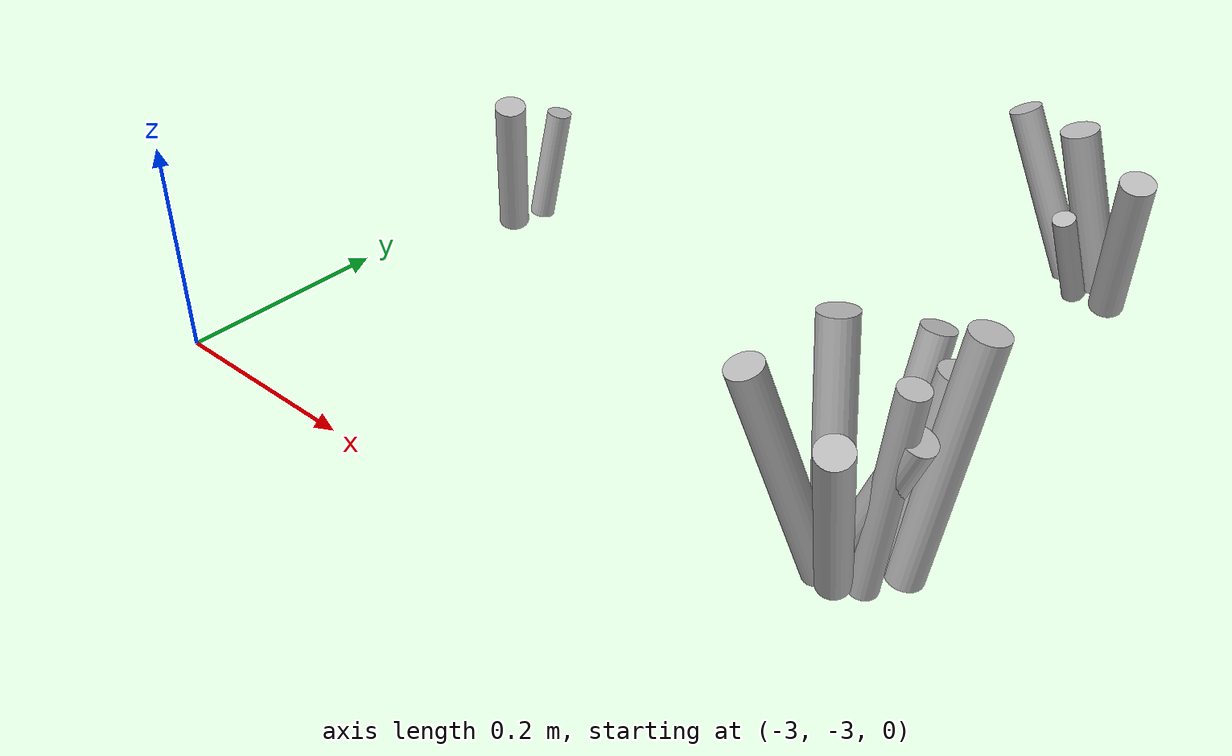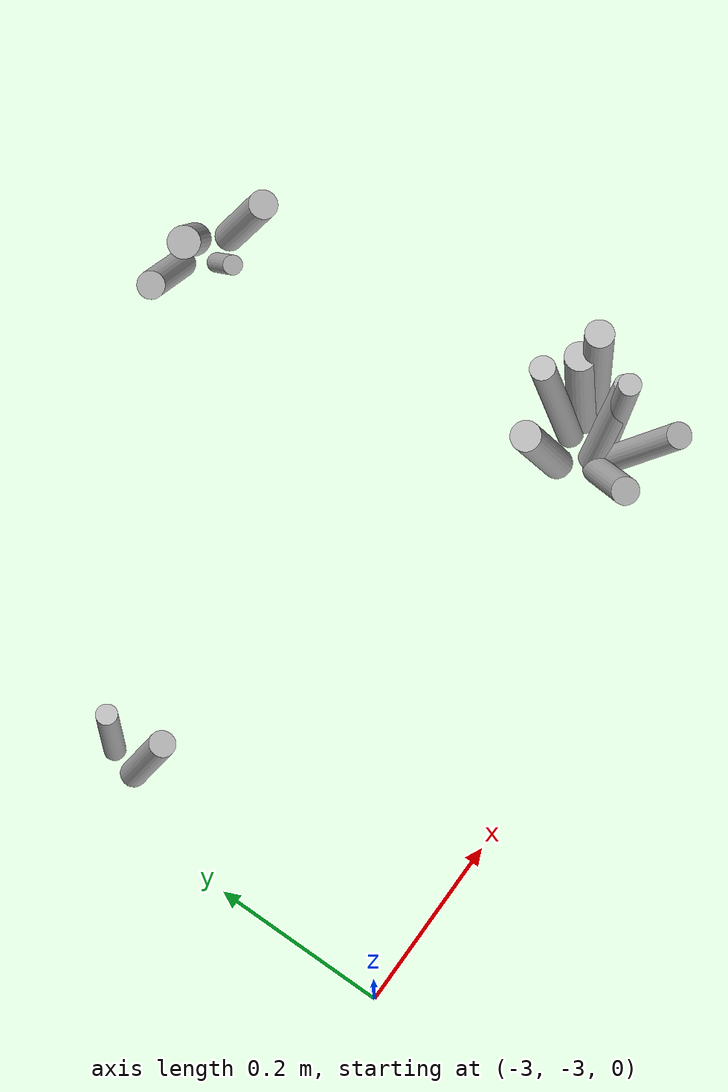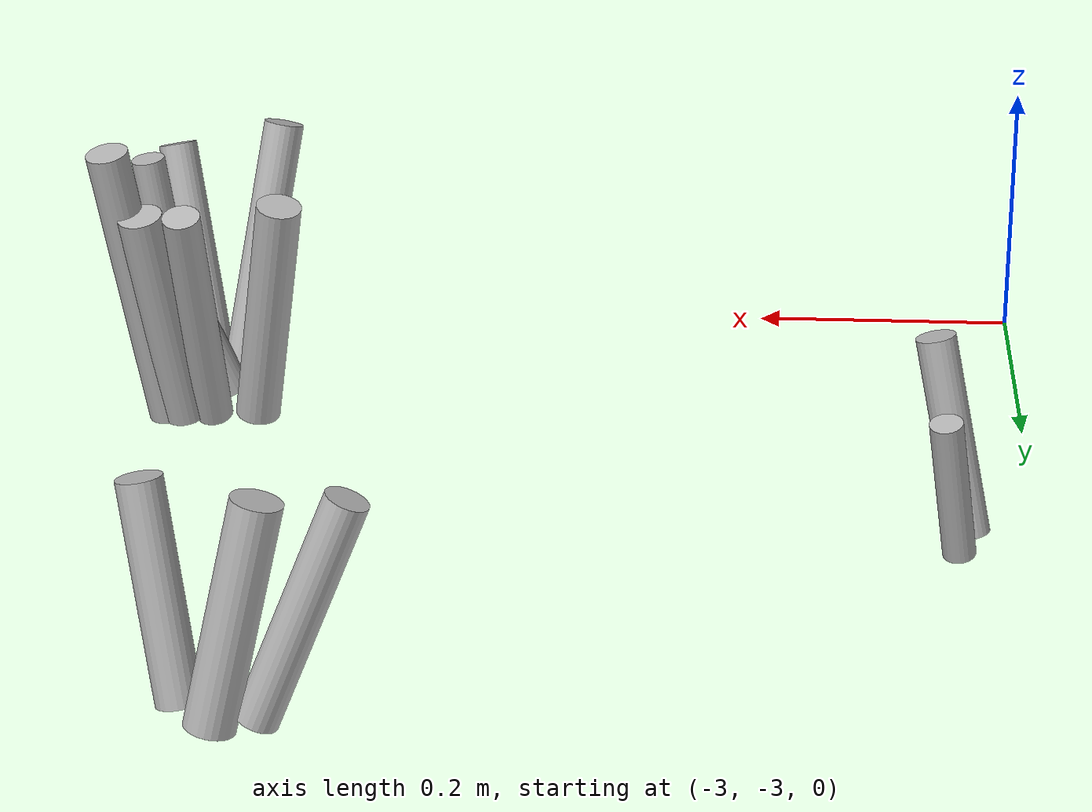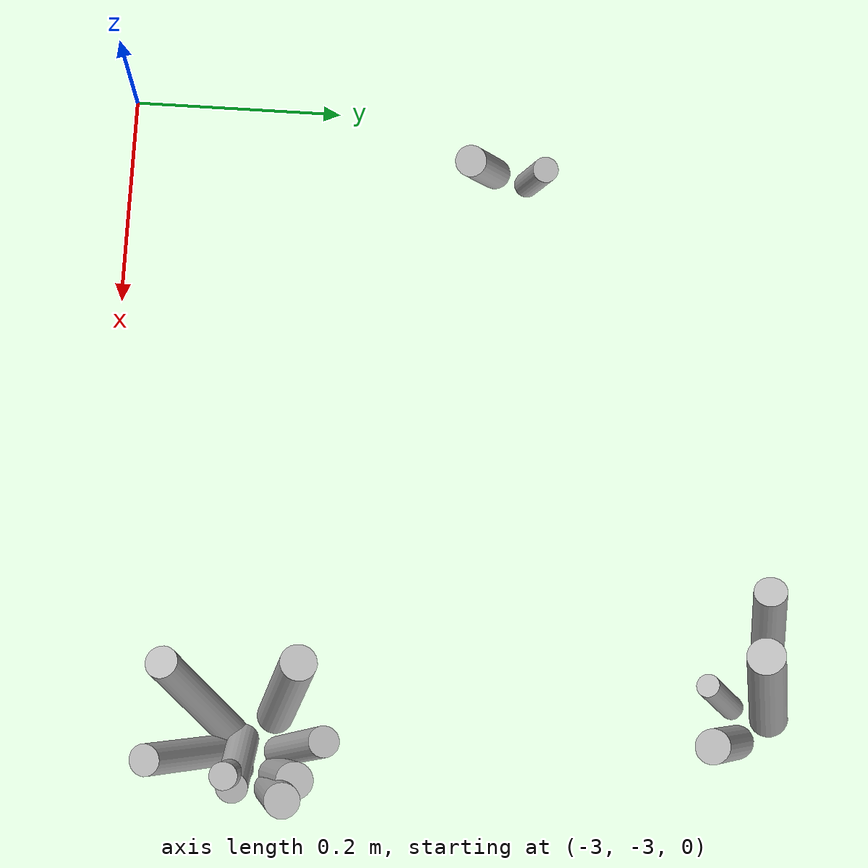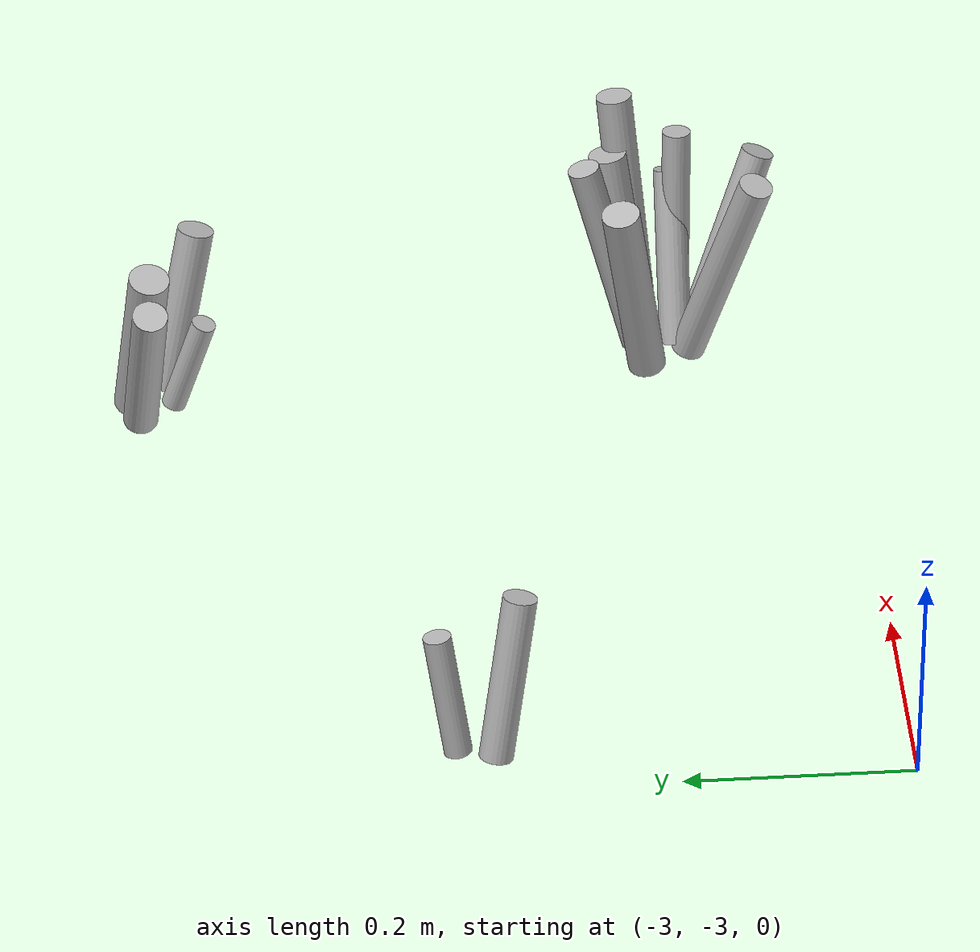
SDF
<sdf version="1.6">
 <world name="default">
  <model name="tussocks">
   <static>true</static>
   <link name="tuft16_0">
    <pose>-2.3940 -2.3990 0.0732 0 0.2555 5.3624</pose>
    <visual name="tuft16_0_v">
     <geometry><cylinder><radius>0.0165</radius><length>0.1591</length></cylinder></geometry>
     <material>
      <script>
       <uri>model://bushfire/materials/scripts</uri>
       <uri>model://bushfire/materials/textures</uri>
       <name>Bushfire/Tussock</name>
      </script>
     </material>
    </visual>
   </link>
   <link name="tuft16_3">
    <pose>-2.4933 -2.3641 0.0803 0 0.3818 3.3153</pose>
    <visual name="tuft16_3_v">
     <geometry><cylinder><radius>0.0157</radius><length>0.1747</length></cylinder></geometry>
     <material>
      <script>
       <uri>model://bushfire/materials/scripts</uri>
       <uri>model://bushfire/materials/textures</uri>
       <name>Bushfire/Tussock</name>
      </script>
     </material>
    </visual>
   </link>
   <link name="tuft16_4">
    <pose>-2.4483 -2.3621 0.0770 0 0.2391 3.5863</pose>
    <visual name="tuft16_4_v">
     <geometry><cylinder><radius>0.0183</radius><length>0.1675</length></cylinder></geometry>
     <material>
      <script>
       <uri>model://bushfire/materials/scripts</uri>
       <uri>model://bushfire/materials/textures</uri>
       <name>Bushfire/Tussock</name>
      </script>
     </material>
    </visual>
   </link>
   <link name="tuft16_7">
    <pose>-2.4418 -2.4038 0.0451 0 0.3136 4.4676</pose>
    <visual name="tuft16_7_v">
     <geometry><cylinder><radius>0.0111</radius><length>0.0981</length></cylinder></geometry>
     <material>
      <script>
       <uri>model://bushfire/materials/scripts</uri>
       <uri>model://bushfire/materials/textures</uri>
       <name>Bushfire/Tussock</name>
      </script>
     </material>
    </visual>
   </link>
   <link name="tuft168_6">
    <pose>-2.9357 -2.6563 0.0704 0 0.2515 5.6473</pose>
    <visual name="tuft168_6_v">
     <geometry><cylinder><radius>0.0149</radius><length>0.1531</length></cylinder></geometry>
     <material>
      <script>
       <uri>model://bushfire/materials/scripts</uri>
       <uri>model://bushfire/materials/textures</uri>
       <name>Bushfire/Tussock</name>
      </script>
     </material>
    </visual>
   </link>
   <link name="tuft168_10">
    <pose>-2.9337 -2.6051 0.0533 0 0.1997 0.8195</pose>
    <visual name="tuft168_10_v">
     <geometry><cylinder><radius>0.0122</radius><length>0.1158</length></cylinder></geometry>
     <material>
      <script>
       <uri>model://bushfire/materials/scripts</uri>
       <uri>model://bushfire/materials/textures</uri>
       <name>Bushfire/Tussock</name>
      </script>
     </material>
    </visual>
   </link>
   <link name="tuft169_0">
    <pose>-2.4036 -2.8891 0.0986 0 0.3101 4.1343</pose>
    <visual name="tuft169_0_v">
     <geometry><cylinder><radius>0.0155</radius><length>0.2143</length></cylinder></geometry>
     <material>
      <script>
       <uri>model://bushfire/materials/scripts</uri>
       <uri>model://bushfire/materials/textures</uri>
       <name>Bushfire/Foliage2</name>
      </script>
     </material>
    </visual>
   </link>
   <link name="tuft169_1">
    <pose>-2.3378 -2.8531 0.0936 0 0.1434 6.2251</pose>
    <visual name="tuft169_1_v">
     <geometry><cylinder><radius>0.0129</radius><length>0.2035</length></cylinder></geometry>
     <material>
      <script>
       <uri>model://bushfire/materials/scripts</uri>
       <uri>model://bushfire/materials/textures</uri>
       <name>Bushfire/Foliage2</name>
      </script>
     </material>
    </visual>
   </link>
   <link name="tuft169_2">
    <pose>-2.3660 -2.7915 0.0897 0 0.2647 1.3626</pose>
    <visual name="tuft169_2_v">
     <geometry><cylinder><radius>0.0145</radius><length>0.1951</length></cylinder></geometry>
     <material>
      <script>
       <uri>model://bushfire/materials/scripts</uri>
       <uri>model://bushfire/materials/textures</uri>
       <name>Bushfire/Foliage2</name>
      </script>
     </material>
    </visual>
   </link>
   <link name="tuft169_3">
    <pose>-2.3370 -2.8042 0.0839 0 0.1948 0.8417</pose>
    <visual name="tuft169_3_v">
     <geometry><cylinder><radius>0.0173</radius><length>0.1824</length></cylinder></geometry>
     <material>
      <script>
       <uri>model://bushfire/materials/scripts</uri>
       <uri>model://bushfire/materials/textures</uri>
       <name>Bushfire/Tussock</name>
      </script>
     </material>
    </visual>
   </link>
   <link name="tuft169_4">
    <pose>-2.4179 -2.8084 0.0882 0 0.2029 2.3205</pose>
    <visual name="tuft169_4_v">
     <geometry><cylinder><radius>0.0173</radius><length>0.1918</length></cylinder></geometry>
     <material>
      <script>
       <uri>model://bushfire/materials/scripts</uri>
       <uri>model://bushfire/materials/textures</uri>
       <name>Bushfire/Foliage2</name>
      </script>
     </material>
    </visual>
   </link>
   <link name="tuft169_5">
    <pose>-2.3521 -2.8971 0.0880 0 0.3697 5.2293</pose>
    <visual name="tuft169_5_v">
     <geometry><cylinder><radius>0.0149</radius><length>0.1913</length></cylinder></geometry>
     <material>
      <script>
       <uri>model://bushfire/materials/scripts</uri>
       <uri>model://bushfire/materials/textures</uri>
       <name>Bushfire/Tussock</name>
      </script>
     </material>
    </visual>
   </link>
   <link name="tuft169_6">
    <pose>-2.3187 -2.8100 0.1069 0 0.1772 0.5973</pose>
    <visual name="tuft169_6_v">
     <geometry><cylinder><radius>0.0163</radius><length>0.2323</length></cylinder></geometry>
     <material>
      <script>
       <uri>model://bushfire/materials/scripts</uri>
       <uri>model://bushfire/materials/textures</uri>
       <name>Bushfire/Foliage2</name>
      </script>
     </material>
    </visual>
   </link>
   <link name="tuft169_7">
    <pose>-2.3492 -2.8497 0.0746 0 0.3943 0.0326</pose>
    <visual name="tuft169_7_v">
     <geometry><cylinder><radius>0.0148</radius><length>0.1622</length></cylinder></geometry>
     <material>
      <script>
       <uri>model://bushfire/materials/scripts</uri>
       <uri>model://bushfire/materials/textures</uri>
       <name>Bushfire/Foliage2</name>
      </script>
     </material>
    </visual>
   </link>
  </model>
 </world>
</sdf>
